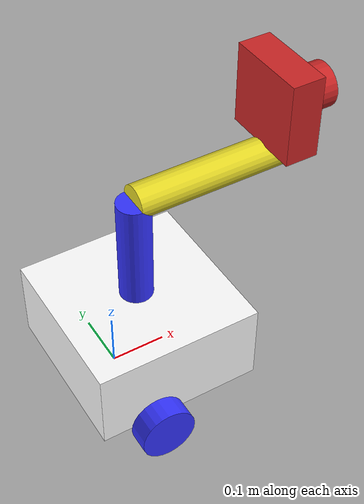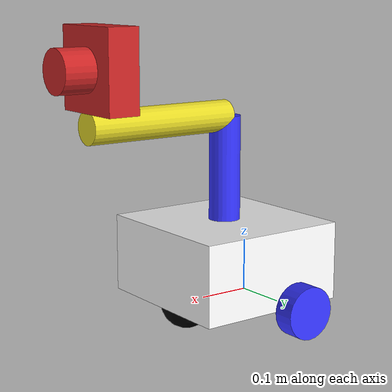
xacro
<?xml version="1.0"?>
<robot xmlns:xacro="http://www.ros.org/wiki/xacro">

  <xacro:include filename="inertial_macros.xacro" />

  <material name="white">
    <color rgba="1 1 1 1" />
  </material>

  <material name="orange">
    <color rgba="1 0.3 0.1 1" />
  </material>

  <material name="blue">
    <color rgba="0.2 0.2 1 1" />
  </material>

  <material name="black">
    <color rgba="0 0 0 1" />
  </material>

  <!-- BASE LINK -->
  <!-- Update Base Link -->

  <link name="base_link">
    <child link="chassis" />
    <child link="left_wheel" />
    <child link="right_wheel" />
    <child link="caster_wheel" />
    <child link="cylinder_link" />
  </link>

  <!-- CHASSIS LINK -->

  <joint name="chassis_joint" type="fixed">
    <parent link="base_link" />
    <child link="chassis" />
    <origin xyz="-0.1 0 0" />
  </joint>

  <link name="chassis">
    <visual>
      <origin xyz="0.15 0 0.075" />
      <geometry>
        <box size="0.3 0.3 0.15" />
      </geometry>
      <material name="white" />
    </visual>
    <collision>
      <origin xyz="0.15 0 0.075" />
      <geometry>
        <box size="0.3 0.3 0.15" />
      </geometry>
    </collision>
    <xacro:inertial_box mass="0.5" x="0.3" y="0.3" z="0.15">
      <origin xyz="0.15 0 0.075" rpy="0 0 0" />
    </xacro:inertial_box>
  </link>

  <!-- LEFT WHEEL LINK -->

  <joint name="left_wheel_joint" type="continuous">
    <parent link="base_link" />
    <child link="left_wheel" />
    <origin xyz="0 0.175 0" rpy="-${pi/2} 0 0" />
    <axis xyz="0 0 1" />
  </joint>

  <link name="left_wheel">
    <visual>
      <geometry>
        <cylinder radius="0.05" length="0.04" />
      </geometry>
      <material name="blue" />
    </visual>
    <collision>
      <geometry>
        <cylinder radius="0.05" length="0.04" />
      </geometry>
    </collision>
    <xacro:inertial_cylinder mass="0.1" length="0.04" radius="0.05">
      <origin xyz="0 0 0" rpy="0 0 0" />
    </xacro:inertial_cylinder>
  </link>

  <!-- RIGHT WHEEL LINK -->

  <joint name="right_wheel_joint" type="continuous">
    <parent link="base_link" />
    <child link="right_wheel" />
    <origin xyz="0 -0.175 0" rpy="${pi/2} 0 0" />
    <axis xyz="0 0 -1" />
  </joint>

  <link name="right_wheel">
    <visual>
      <geometry>
        <cylinder radius="0.05" length="0.04" />
      </geometry>
      <material name="blue" />
    </visual>
    <collision>
      <geometry>
        <cylinder radius="0.05" length="0.04" />
      </geometry>
    </collision>
    <xacro:inertial_cylinder mass="0.1" length="0.04" radius="0.05">
      <origin xyz="0 0 0" rpy="0 0 0" />
    </xacro:inertial_cylinder>
  </link>

  <!-- CASTER WHEEL LINK -->

  <joint name="caster_wheel_joint" type="fixed">
    <parent link="chassis" />
    <child link="caster_wheel" />
    <origin xyz="0.24 0 0" />
  </joint>

  <link name="caster_wheel">
    <visual>
      <geometry>
        <sphere radius="0.05" />
      </geometry>
      <material name="black" />
    </visual>
    <collision>
      <geometry>
        <sphere radius="0.05" />
      </geometry>
    </collision>
    <xacro:inertial_sphere mass="0.1" radius="0.05">
      <origin xyz="0 0 0" rpy="0 0 0" />
    </xacro:inertial_sphere>
  </link>

  <!-- CYLINDER JOINT -->

  <joint name="cylinder_joint" type="continuous">
    <parent link="chassis" />
    <child link="cylinder_link" />
    <origin xyz="0.15 0 0.15" rpy="0 0 0" />
    <axis xyz="0 0 1" />
  </joint>

  <!-- CYLINDER LINK -->

  <link name="cylinder_link">
    <visual>
      <geometry>
        <cylinder radius="0.03" length="0.4" />
      </geometry>
      <material name="blue" />
    </visual>
    <collision>
      <geometry>
        <cylinder radius="0.03" length="0.4" />
      </geometry>
    </collision>
    <xacro:inertial_cylinder mass="0.05" length="0.4" radius="0.03">
      <origin xyz="0 0 0" rpy="0 0 0" />
    </xacro:inertial_cylinder>
  </link>

    <!-- NEW JOINT -->
    <joint name="new_joint" type="revolute">
      <parent link="cylinder_link" />
      <child link="new_link" />
  <origin xyz="0 0 0.2" rpy="0 1.5708 0" />
  <axis xyz="0 1 0" />
  <limit lower="${-pi}" upper="${pi/4}" velocity="100" effort="100"/>
    </joint>

    <!-- NEW LINK -->
<link name="new_link">
  <visual>
  <origin xyz="0 0 0.15" rpy="0 0 0" />
    <geometry>
      <cylinder radius="0.03" length="0.3" />
    </geometry>
    <material name="yellow" />
  </visual>
  <collision>
    <geometry>
      <cylinder radius="0.03" length="0.3" />
    </geometry>
  </collision>
  <inertial>
    <mass value="0.01" />
    <origin xyz="0 0 0" rpy="0 0 0" />
    <inertia ixx="0.0001" ixy="0" ixz="0" iyy="0.0001" iyz="0" izz="0.0001" />
  </inertial>
</link>

     <joint name="camera_joint" type="fixed">
        <origin xyz="-0.1 0 0.3" rpy="0 -1.5708 0" />
        <parent link="new_link"/>
        <child link="camera_link"/>
    </joint>

    <!-- camera_link describes the camera at the end of the arm -->
    <!-- - It has multiple visual elements, which ultimately get combined together -->
    <!-- - Even if we specify different materials, RViz will just colour them all the same as the first -->
    <!-- - Although we could also specify multiple collision geometries, instead we just use a single box that encompasses the whole camera -->
    <link name="camera_link">
        <visual>
            <origin xyz="-0.03 0 0" rpy="0 0 0"/>
            <geometry>
                <box size="0.06 0.15 0.15" />
            </geometry>
            <material name="red" />
        </visual>
        <visual>
            <origin xyz="0.03 0 0" rpy="0 ${pi/2} 0"/>
            <geometry>
                <cylinder length="0.06" radius="0.04" />
            </geometry>
            <material name="red" />
        </visual>
        <collision>
            <origin xyz="0.0 0 0" rpy="0 0 0"/>
            <geometry>
                <box size="0.12 0.15 0.15" />
            </geometry>
        </collision>
        <xacro:inertial_box mass="0.1" x="0.12" y="0.15" z="0.15">
            <origin xyz="0.0 0 0" rpy="0 0 0"/>
        </xacro:inertial_box>
    </link>

</robot>
